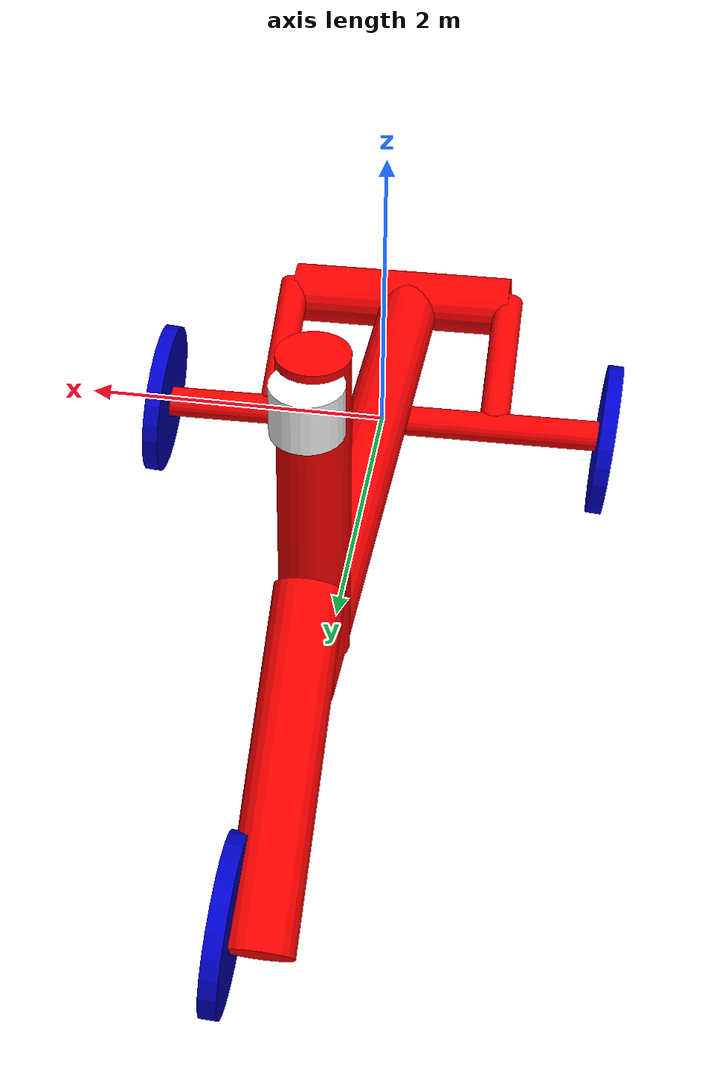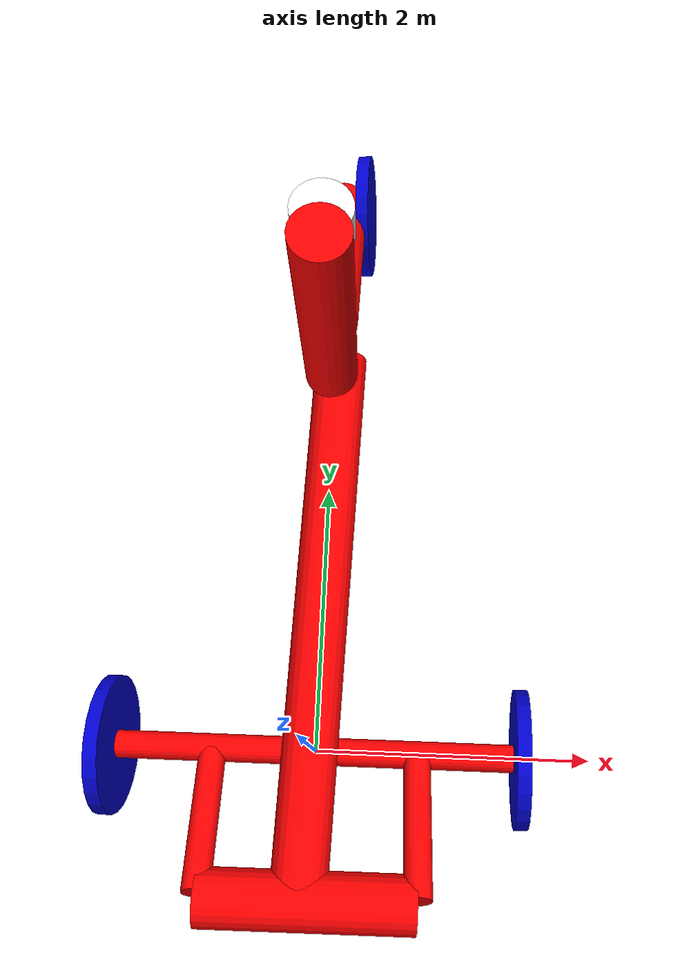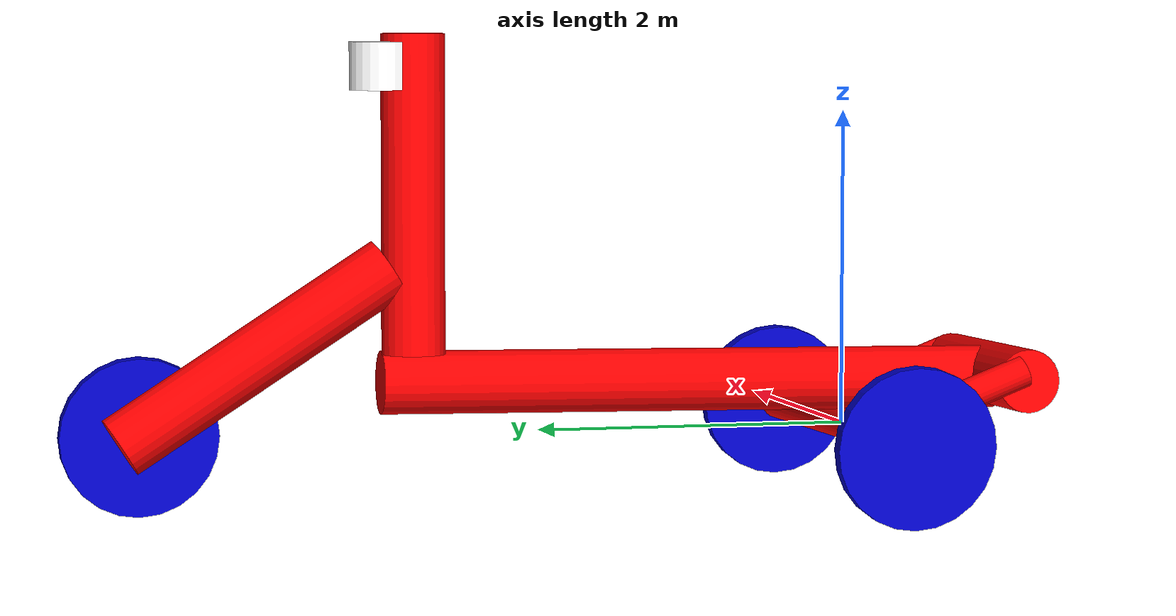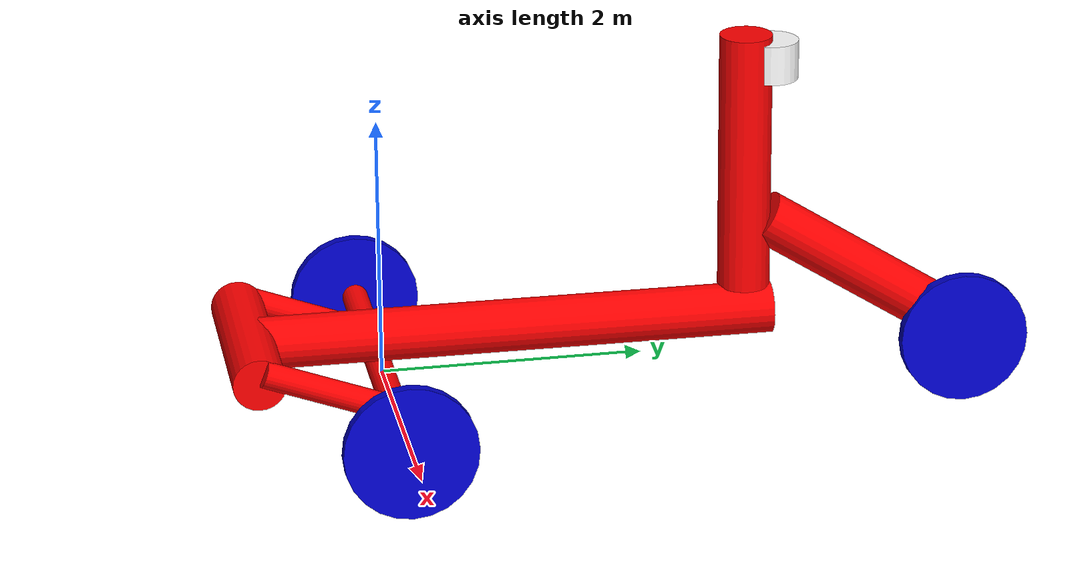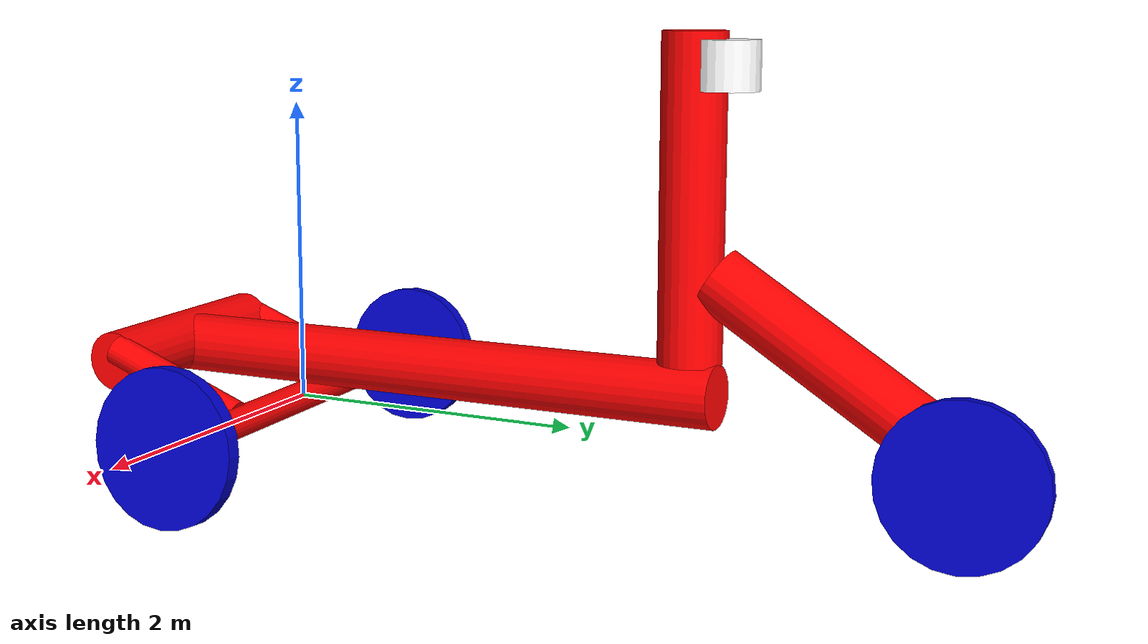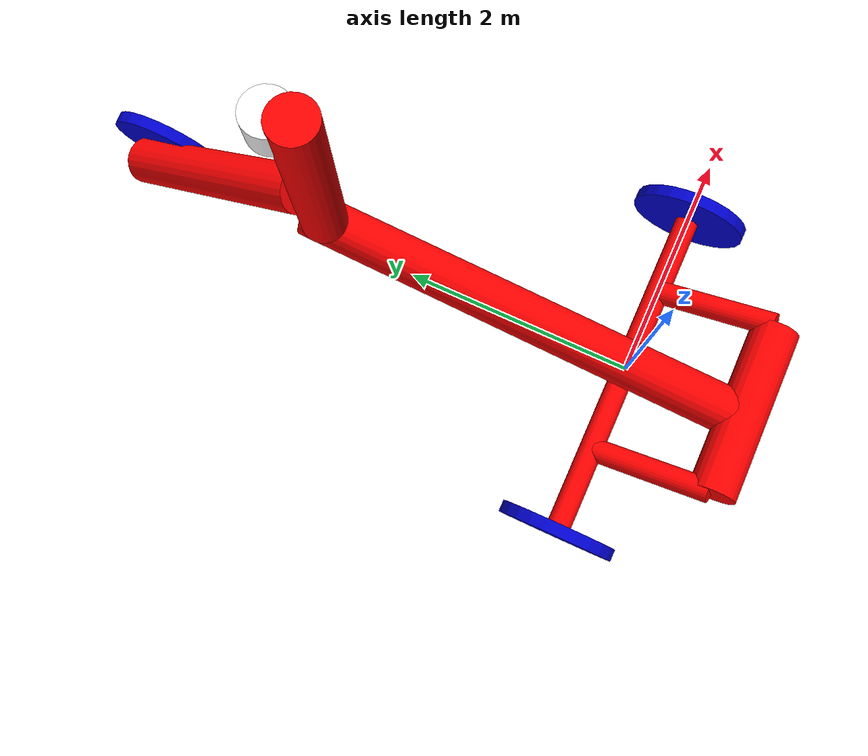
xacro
<?xml version="1.0"?>
<robot name="tricycle" xmlns:xacro="http://ros.org/wiki/xacro">

<xacro:property name = "wheel_length" value = "0.1"/>
<xacro:property name = "wheel_radius" value = "0.5"/>

<link name="base_link">

	    <visual>
			<origin xyz="0 0 0" rpy="1 1.6 1" />
			<geometry>
	         <cylinder length='3' radius='0.1'/>
	        </geometry>
			<material name="red" >
			<color rgba="1.0 0.0 0.0 1.0 "/>
			</material>
	    </visual>

</link>

<link name="arm_support">

	    <visual>
			<origin xyz="0 -1 0.3" rpy="1 1.6 1" />
			<geometry>
	         <cylinder length='1.5' radius='0.2'/>
	        </geometry>
			<material name="red" />
	    </visual>

</link>

<link name="left_support">

	    <visual>
			<origin xyz="0.75 -0.5 0.2" rpy="2.6 2 1" />
			<geometry>
	         <cylinder length='1' radius='0.1'/>
	        </geometry>
			<material name="red" />
	    </visual>

</link>

<link name="right_support">

	    <visual>
			<origin xyz="-0.75 -0.5 0.2" rpy="2.6 2 1" />
			<geometry>
	         <cylinder length='1' radius='0.1'/>
	        </geometry>
			<material name="red" />
	    </visual>

</link>

<link name="left_back_wheel">

	    <visual>
	    <origin xyz="0 0 0" rpy="0 1.5 0" />
			<geometry>
	         <cylinder length = "${wheel_length}" radius="${wheel_radius}"/>

	        </geometry>
			<material name="blue">
			<color rgba="0.0 0.0 0.8 1.0 "/>
			</material>
	    </visual>

</link>

<link name="right_back_wheel">

	    <visual>
	    <origin xyz="0 0 0" rpy="0 1.5 0" />
			<geometry>
	         <cylinder length = "${wheel_length}" radius="${wheel_radius}"/>

	        </geometry>
			<material name="blue">
			<color rgba="0.0 0.0 0.8 1.0 "/>
			</material>
	    </visual>

</link>

<link name="arm">

	    <visual>
			<origin xyz="0 1 0.3" rpy="2.6 1.56 1" />
			<geometry>
	         <cylinder length='4' radius='0.2'/>
	        </geometry>
			<material name="red" />
	    </visual>

</link>
<link name="upper_support">

	    <visual>
			<origin xyz="0 2.8 1.5" rpy="0 0 0" />
			<geometry>
	         <cylinder length='2' radius='0.2'/>
	        </geometry>
			<material name="red" />
	    </visual>

</link>

<link name="lower_support">

	    <visual>
			<origin xyz="0 3.8 0.5" rpy="1 0 0" />
			<geometry>
	         <cylinder length='2' radius='0.2'/>
	        </geometry>
			<material name="red" />
	    </visual>

</link>

<link name="front_wheel">

	    <visual>
	    <origin xyz="0 0 0" rpy="0 1.5 0" />
			<geometry>
	         <cylinder length = "${wheel_length}" radius="${wheel_radius}"/>

	        </geometry>
			<material name="blue" />
	    </visual>

</link>

<link name="camera">

	    <visual>
			<origin xyz="0 3 2.3" rpy="0 0 0" />
			<geometry>
	         <cylinder length = "0.3" radius="0.2"/>
	        </geometry>
			<material name="white">
			<color rgba="1 1 1 1.0 "/>
			</material>
	    </visual>

</link>

<joint name="as_to_arm" type="fixed">
    <origin xyz="0 0 0" rpy="0 0 0"/>
    <parent link="arm_support"/>
    <child link="arm"/>

 </joint>
 <joint name="as_to_lbl" type="fixed">
    <origin xyz="0 0 0" rpy="0 0 0"/>
    <parent link="arm_support"/>
    <child link="base_link"/>
 </joint>

 <joint name="bl_to_lbw" type="revolute">
    <origin xyz="1.5 0 0" rpy="0 0 0" />
    <parent link="base_link"/>
    <child link="left_back_wheel"/>
    <axis xyz = "1 0 0 " />
    <limit effort ="1000.0" lower="-1.0" upper="1.0" velocity="0.5"/>

 </joint>

 <joint name="bl_to_rbw" type="revolute">
    <origin xyz="-1.5 0 0" rpy="0 0 0" />
    <parent link="base_link"/>
    <child link="right_back_wheel"/>
    <axis xyz = "1 0 0" />
    <limit effort ="1000.0" lower="-1.0" upper="1.0" velocity="0.5"/>

 </joint>

 <joint name="arm_to_us" type="fixed">
    <origin xyz="0 0 0" rpy="0 0 0"/>
    <parent link="arm"/>
    <child link="upper_support"/>

 </joint>

 <joint name = "us_to_ls" type = "fixed">
 	<origin xyz = "0 0 0" rpy = "0 0 0" />
 	<parent link = "upper_support" />
 	<child link = "lower_support" />

 </joint>

 <joint name="ls_to_fw" type="revolute">
    <origin xyz="0.2 4.5 0" rpy="0 0 0" />
    <parent link="lower_support"/>
    <child link="front_wheel"/>
    <axis xyz = "1 0 0" />
    <limit effort ="1000.0" lower="-1.0" upper="1.0" velocity="0.5"/>

 </joint>

 <joint name="us_to_camera" type="fixed">
    <origin xyz="0 0 0" rpy="0 0 0"/>
    <parent link="upper_support"/>
    <child link="camera"/>

 </joint>

 <joint name = "as_to_ls" type = "fixed">
 	<origin xyz = "0 0 0" rpy = "0 0 0" />
 	<parent link = "arm_support"/>
 	<child link = "left_support"/>

 </joint>

 <joint name = "as_to_rs" type = "fixed">
 	<origin xyz = "0 0 0" rpy = "0 0 0" />
 	<parent link = "arm_support"/>
 	<child link = "right_support"/>

 </joint>

</robot>

<!--
to run :
roslaunch tricyle tricycle.launch

-->
